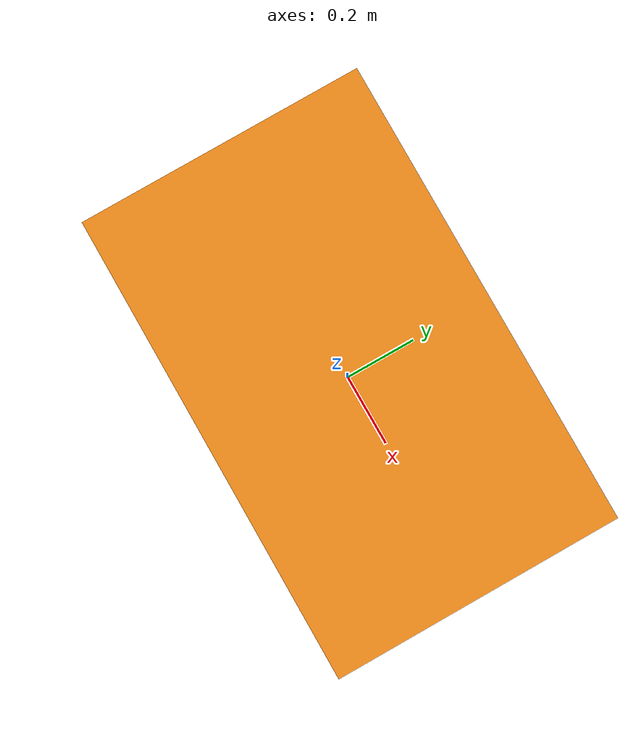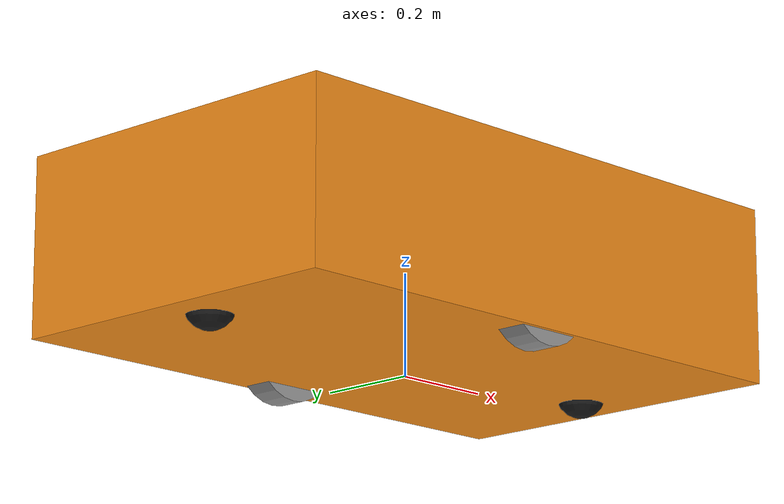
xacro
<?xml version="1.0"?>
<robot name="mycar" xmlns:xacro="http://ros.org/wiki/xacro">

    <!-- 地平面的位置   -->
    <link name="base_footprint">
    </link>

    <!-- 小车地盘相关参数 -->
    <xacro:property name="base_length" value="1.21" />
    <xacro:property name="base_width" value="0.738" />

    <xacro:property name="base_depth" value="0.35" />
    <xacro:property name="base_up" value="0.028" /> <!-- 小车地盘离地距离 -->
    <xacro:property name="base_center_up" value="${base_depth/2 + base_up}" /> <!-- 小车中心点离地距离 -->
    <xacro:property name="base_m" value="0.5" /> <!-- 地盘重量 -->

    <!-- 主动轮相关参数 -->
    <xacro:property name="main_wheel_radius" value="0.10"  />
    <xacro:property name="main_wheel_length" value="0.06" />
    <xacro:property name="main_wheel_m" value="0.1" />

    <!-- 从动轮相关参数 -->
    <xacro:property name="sub_wheel_radius" value="0.05"  />
    <xacro:property name="sub_wheel_length" value="0.055" />
    <xacro:property name="sub_wheel_m" value="0.1"  />

    <xacro:property name="wheel_offset_up" value="0.102"  />
    <xacro:property name="main_wheel_offset_left" value="0.039"  />
    <xacro:property name="sub_wheel_offset_left" value="0.091"  />

    <!-- base link 小车中心的位置-->
    <link name="base_link">
        <visual>
            <origin xyz="0 0 0.0" rpy="0 0 0"/>
            <geometry>
                <box size="${base_length} ${base_width} ${base_depth}"></box>
            </geometry>
            <material name="orange"/>
        </visual>
        <!-- 碰撞检测设置 -->
        <collision>
            <origin xyz="0 0 0.0" rpy="0 0 0"/>
            <geometry>
                <box size="${base_length} ${base_width} ${base_depth}"></box>
            </geometry>
        </collision>
        <!-- 惯性矩阵设置 -->
        <xacro:Box_inertial_matrix m="${base_m}" l="${base_length}" w="${base_width}" h="${base_depth}" />
    </link>

    <!-- 使小车距离地面上方0.05M -->
    <joint name="link2footprint" type="fixed">
        <parent link="base_footprint" />
        <child link="base_link" />
        <!-- （base_link距离base_footprint的位置） =  车身一半高度（0.05） + 离地距离（0.05） -->
        <origin xyz="0 0 ${ base_depth / 2 + base_up }" />
    </joint>

    <!-- 主动轮宏实现 -->
    <xacro:macro name="add_main_wheel" params="name type">
        <link name="${name}_wheel">
            <visual>
                <!-- x方向翻转1.57.8弧度，及90度 -->
                <origin xyz="0 0 0" rpy="1.5708 0 0"/>
                <geometry>
                    <cylinder radius="${main_wheel_radius}" length="${main_wheel_length}"></cylinder>
                </geometry>
                <material name="grey"/>
            </visual>
            <!-- 碰撞检测设置 -->
            <collision>
                <origin xyz="0 0 0" rpy="1.5708 0 0"/>
                <geometry>
                    <cylinder radius="${main_wheel_radius}" length="${main_wheel_length}"></cylinder>
                </geometry>
            </collision>
            <!-- 惯性矩阵设置 -->
            <xacro:cylinder_inertial_matrix m="${main_wheel_m}" r="${main_wheel_radius}" h="${main_wheel_length}" />

        </link>

        <joint name="${name}2link" type="continuous">
            <parent link="base_link" />
            <child link="${name}_wheel" />
            <!-- X 方向：无偏移
            Y 方向：车身宽度的一半
            Z 方向：baselink距离地面的高度 - 车轮半径 -->
            <xacro:if value="${type == 'left'}">
                <origin xyz="0 ${base_width/2 - main_wheel_offset_left} ${-(base_center_up - main_wheel_radius)}" />
            </xacro:if>
            <xacro:if value="${type == 'right'}">
                <origin xyz="0 ${-base_width/2 + main_wheel_offset_left} ${-(base_center_up - main_wheel_radius)}" />
            </xacro:if>

            <!-- 绕Y轴转动 -->
            <axis xyz="0 1 0" />
        </joint>
    </xacro:macro>

    <!-- 添加主动轮 -->
    <xacro:add_main_wheel name="left" type="left"/>
    <xacro:add_main_wheel name="right" type="right"/>

    <!-- 万向轮宏实现 -->
    <xacro:macro name="add_sub_wheel" params="name pos">
        <link name="wheel${name}">
            <visual>
                <origin xyz="0 0 0" rpy="0 0 0"/>
                <geometry>
                    <sphere radius="${sub_wheel_radius}"/>
                </geometry>
                <material name="light_black"/>
            </visual>
            <collision>
                <origin xyz="0 0 0" rpy="0 0 0"/>
                <geometry>
                    <sphere radius="${sub_wheel_radius}"/>
                </geometry>
            </collision>
            <!-- 惯性矩阵设置 -->
            <xacro:sphere_inertial_matrix m="${sub_wheel_m}" r="${sub_wheel_radius}" />

        </link>

        <joint name="wheel${name}_joint" type="continuous">
            <parent link="base_link" />
            <child link="wheel${name}" />
            <!-- 左上 -->
            <!-- 右上 -->
            <!-- 左下 -->
            <!-- 右下 -->

            <xacro:if value="${pos == 'z'}">
                <origin xyz="${base_length/2 - wheel_offset_up} 0 ${-(base_center_up - sub_wheel_radius)}" />
            </xacro:if>

            <xacro:if value="${pos == 'c'}">
                <origin xyz="${-base_length/2 + wheel_offset_up} 0 ${-(base_center_up - sub_wheel_radius)}" />
            </xacro:if>

            <axis xyz="0 1 1" />
        </joint>

    </xacro:macro>

    <!-- 四个万向轮实现 -->
    <xacro:add_sub_wheel name="3" pos="z"/>
    <xacro:add_sub_wheel name="4" pos="c"/>

    <gazebo reference="base_link">
        <material>Gazebo/Red</material>
    </gazebo>

</robot>
